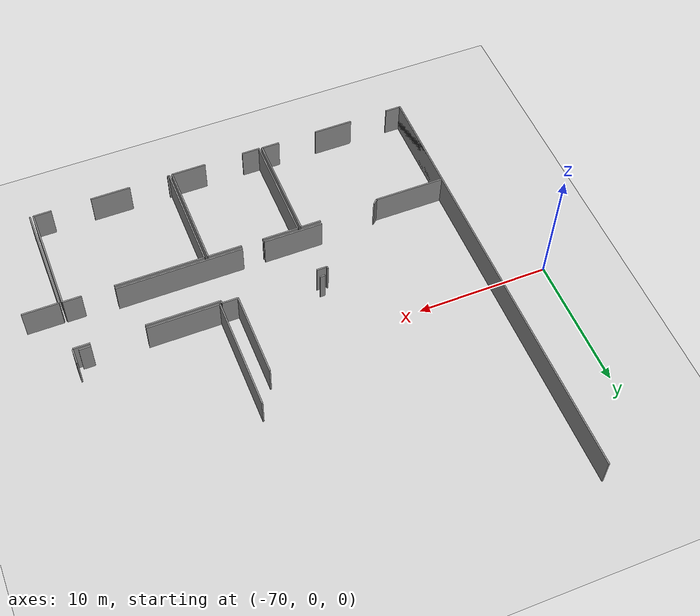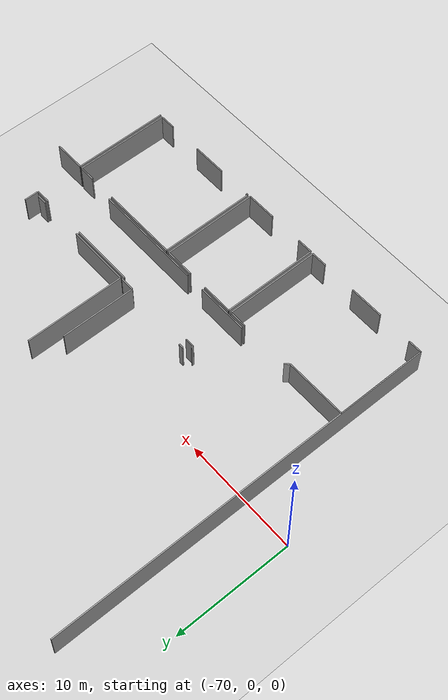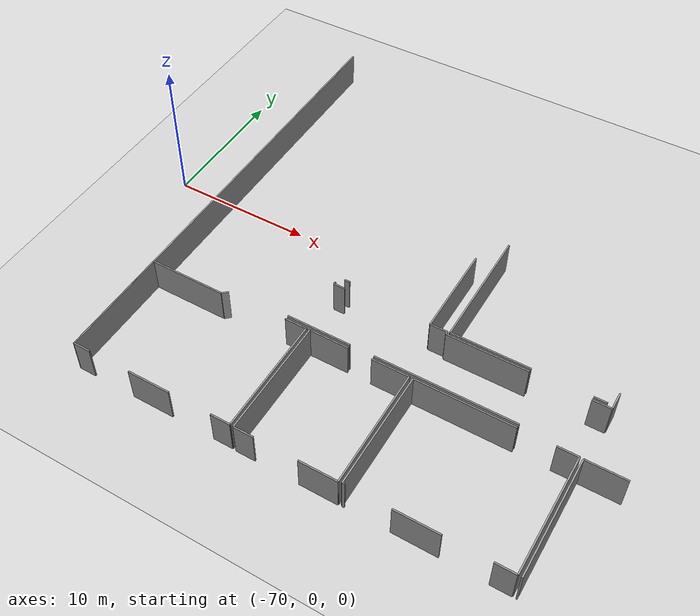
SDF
<sdf version="1.6">
 <world name="default">
  <model name="ground_plane">
   <static>1</static>
   <link name="link">
    <collision name="collision">
     <geometry><plane><normal>0 0 1</normal><size>100 100</size></plane></geometry>
     <surface><friction><ode><mu>100</mu><mu2>50</mu2></ode></friction></surface>
    </collision>
    <visual name="visual">
     <cast_shadows>0</cast_shadows>
     <geometry><plane><normal>0 0 1</normal><size>100 100</size></plane></geometry>
     <material>
      <script><uri>file://media/materials/scripts/gazebo.material</uri><name>Gazebo/Grey</name></script>
     </material>
    </visual>
   </link>
  </model>
  <model name="50041173">
   <static>1</static>
   <link name="Wall_142">
    <collision name="Wall_142_Collision">
     <geometry><box><size>9.57335804412 0.1 2.5</size></box></geometry>
     <pose>4.78667902206 0 1.25 0 0 0</pose>
    </collision>
    <visual name="Wall_142_Visual">
     <pose>4.78667902206 0 1.25 0 0 0</pose>
     <geometry><box><size>9.57335804412 0.1 2.5</size></box></geometry>
     <material>
      <script><uri>file://media/materials/scripts/gazebo.material</uri><name>Gazebo/Grey</name></script>
      <ambient>1 1 1 1</ambient>
     </material>
    </visual>
    <pose>25.7466551575 -25.056107035 0 0 0 3.14159265359</pose>
   </link>
   <link name="Wall_143">
    <collision name="Wall_143_Collision">
     <geometry><box><size>4.50163751301 0.1 2.5</size></box></geometry>
     <pose>2.25081875651 0 1.25 0 0 0</pose>
    </collision>
    <visual name="Wall_143_Visual">
     <pose>2.25081875651 0 1.25 0 0 0</pose>
     <geometry><box><size>4.50163751301 0.1 2.5</size></box></geometry>
     <material>
      <script><uri>file://media/materials/scripts/gazebo.material</uri><name>Gazebo/Grey</name></script>
      <ambient>1 1 1 1</ambient>
     </material>
    </visual>
    <pose>14.5031607809 -25.056107035 0 0 0 3.14159265359</pose>
   </link>
   <link name="Wall_144">
    <collision name="Wall_144_Collision">
     <geometry><box><size>0.170098250781 0.1 2.5</size></box></geometry>
     <pose>0.0850491253903 0 1.25 0 0 0</pose>
    </collision>
    <visual name="Wall_144_Visual">
     <pose>0.0850491253903 0 1.25 0 0 0</pose>
     <geometry><box><size>0.170098250781 0.1 2.5</size></box></geometry>
     <material>
      <script><uri>file://media/materials/scripts/gazebo.material</uri><name>Gazebo/Grey</name></script>
      <ambient>1 1 1 1</ambient>
     </material>
    </visual>
    <pose>11.0943410597 -21.1308994897 0 0 0 -1.57079632679</pose>
   </link>
   <link name="Wall_145">
    <collision name="Wall_145_Collision">
     <geometry><box><size>0.801238924573 0.1 2.5</size></box></geometry>
     <pose>0.400619462286 0 1.25 0 0 0</pose>
    </collision>
    <visual name="Wall_145_Visual">
     <pose>0.400619462286 0 1.25 0 0 0</pose>
     <geometry><box><size>0.801238924573 0.1 2.5</size></box></geometry>
     <material>
      <script><uri>file://media/materials/scripts/gazebo.material</uri><name>Gazebo/Grey</name></script>
      <ambient>1 1 1 1</ambient>
     </material>
    </visual>
    <pose>11.0943410597 -21.3009977405 0 0 0 0.0</pose>
   </link>
   <link name="Wall_146">
    <collision name="Wall_146_Collision">
     <geometry><box><size>5.57541445581 0.1 2.5</size></box></geometry>
     <pose>2.78770722791 0 1.25 0 0 0</pose>
    </collision>
    <visual name="Wall_146_Visual">
     <pose>2.78770722791 0 1.25 0 0 0</pose>
     <geometry><box><size>5.57541445581 0.1 2.5</size></box></geometry>
     <material>
      <script><uri>file://media/materials/scripts/gazebo.material</uri><name>Gazebo/Grey</name></script>
      <ambient>1 1 1 1</ambient>
     </material>
    </visual>
    <pose>19.1200588997 -21.3009977405 0 0 0 0.0</pose>
   </link>
   <link name="Wall_147">
    <collision name="Wall_147_Collision">
     <geometry><box><size>1.25555358095 0.1 2.5</size></box></geometry>
     <pose>0.627776790474 0 1.25 0 0 0</pose>
    </collision>
    <visual name="Wall_147_Visual">
     <pose>0.627776790474 0 1.25 0 0 0</pose>
     <geometry><box><size>1.25555358095 0.1 2.5</size></box></geometry>
     <material>
      <script><uri>file://media/materials/scripts/gazebo.material</uri><name>Gazebo/Grey</name></script>
      <ambient>1 1 1 1</ambient>
     </material>
    </visual>
    <pose>28.6567315748 -21.3009977405 0 0 0 0.0</pose>
   </link>
   <link name="Wall_243">
    <collision name="Wall_243_Collision">
     <geometry><box><size>8.22564675417 0.1 2.5</size></box></geometry>
     <pose>4.11282337708 0 1.25 0 0 0</pose>
    </collision>
    <visual name="Wall_243_Visual">
     <pose>4.11282337708 0 1.25 0 0 0</pose>
     <geometry><box><size>8.22564675417 0.1 2.5</size></box></geometry>
     <material>
      <script><uri>file://media/materials/scripts/gazebo.material</uri><name>Gazebo/Grey</name></script>
      <ambient>1 1 1 1</ambient>
     </material>
    </visual>
    <pose>29.7687171545 -33.5648277438 0 0 0 1.57079632679</pose>
   </link>
   <link name="Wall_244">
    <collision name="Wall_244_Collision">
     <geometry><box><size>2.72918835208 0.1 2.5</size></box></geometry>
     <pose>1.36459417604 0 1.25 0 0 0</pose>
    </collision>
    <visual name="Wall_244_Visual">
     <pose>1.36459417604 0 1.25 0 0 0</pose>
     <geometry><box><size>2.72918835208 0.1 2.5</size></box></geometry>
     <material>
      <script><uri>file://media/materials/scripts/gazebo.material</uri><name>Gazebo/Grey</name></script>
      <ambient>1 1 1 1</ambient>
     </material>
    </visual>
    <pose>29.7687171545 -25.3391809896 0 0 0 0.0</pose>
   </link>
   <link name="Wall_247">
    <collision name="Wall_247_Collision">
     <geometry><box><size>1.35761253142 0.1 2.5</size></box></geometry>
     <pose>0.678806265709 0 1.25 0 0 0</pose>
    </collision>
    <visual name="Wall_247_Visual">
     <pose>0.678806265709 0 1.25 0 0 0</pose>
     <geometry><box><size>1.35761253142 0.1 2.5</size></box></geometry>
     <material>
      <script><uri>file://media/materials/scripts/gazebo.material</uri><name>Gazebo/Grey</name></script>
      <ambient>1 1 1 1</ambient>
     </material>
    </visual>
    <pose>29.5129350834 -33.5223031811 0 0 0 3.14159265359</pose>
   </link>
   <link name="Wall_248">
    <collision name="Wall_248_Collision">
     <geometry><box><size>3.02698722994 0.1 2.5</size></box></geometry>
     <pose>1.51349361497 0 1.25 0 0 0</pose>
    </collision>
    <visual name="Wall_248_Visual">
     <pose>1.51349361497 0 1.25 0 0 0</pose>
     <geometry><box><size>3.02698722994 0.1 2.5</size></box></geometry>
     <material>
      <script><uri>file://media/materials/scripts/gazebo.material</uri><name>Gazebo/Grey</name></script>
      <ambient>1 1 1 1</ambient>
     </material>
    </visual>
    <pose>25.1335398208 -33.5223031811 0 0 0 3.14159265359</pose>
   </link>
   <link name="Wall_249">
    <collision name="Wall_249_Collision">
     <geometry><box><size>0.176699078423 0.1 2.5</size></box></geometry>
     <pose>0.0883495392115 0 1.25 0 0 0</pose>
    </collision>
    <visual name="Wall_249_Visual">
     <pose>0.0883495392115 0 1.25 0 0 0</pose>
     <geometry><box><size>0.176699078423 0.1 2.5</size></box></geometry>
     <material>
      <script><uri>file://media/materials/scripts/gazebo.material</uri><name>Gazebo/Grey</name></script>
      <ambient>1 1 1 1</ambient>
     </material>
    </visual>
    <pose>19.17045368 -33.5223031811 0 0 0 3.14159265359</pose>
   </link>
   <link name="Wall_250">
    <collision name="Wall_250_Collision">
     <geometry><box><size>8.20914468506 0.1 2.5</size></box></geometry>
     <pose>4.10457234253 0 1.25 0 0 0</pose>
    </collision>
    <visual name="Wall_250_Visual">
     <pose>4.10457234253 0 1.25 0 0 0</pose>
     <geometry><box><size>8.20914468506 0.1 2.5</size></box></geometry>
     <material>
      <script><uri>file://media/materials/scripts/gazebo.material</uri><name>Gazebo/Grey</name></script>
      <ambient>1 1 1 1</ambient>
     </material>
    </visual>
    <pose>18.9937546015 -33.5223031811 0 0 0 1.57079632679</pose>
   </link>
   <link name="Wall_251">
    <collision name="Wall_251_Collision">
     <geometry><box><size>6.74921932519 0.1 2.5</size></box></geometry>
     <pose>3.3746096626 0 1.25 0 0 0</pose>
    </collision>
    <visual name="Wall_251_Visual">
     <pose>3.3746096626 0 1.25 0 0 0</pose>
     <geometry><box><size>6.74921932519 0.1 2.5</size></box></geometry>
     <material>
      <script><uri>file://media/materials/scripts/gazebo.material</uri><name>Gazebo/Grey</name></script>
      <ambient>1 1 1 1</ambient>
     </material>
    </visual>
    <pose>18.9937546015 -25.313158496 0 0 0 0.0</pose>
   </link>
   <link name="Wall_252">
    <collision name="Wall_252_Collision">
     <geometry><box><size>1.39632892432 0.1 2.5</size></box></geometry>
     <pose>0.698164462159 0 1.25 0 0 0</pose>
    </collision>
    <visual name="Wall_252_Visual">
     <pose>0.698164462159 0 1.25 0 0 0</pose>
     <geometry><box><size>1.39632892432 0.1 2.5</size></box></geometry>
     <material>
      <script><uri>file://media/materials/scripts/gazebo.material</uri><name>Gazebo/Grey</name></script>
      <ambient>1 1 1 1</ambient>
     </material>
    </visual>
    <pose>28.1438980426 -25.313158496 0 0 0 0.0</pose>
   </link>
   <link name="Wall_253">
    <collision name="Wall_253_Collision">
     <geometry><box><size>8.20919005184 0.1 2.5</size></box></geometry>
     <pose>4.10459502592 0 1.25 0 0 0</pose>
    </collision>
    <visual name="Wall_253_Visual">
     <pose>4.10459502592 0 1.25 0 0 0</pose>
     <geometry><box><size>8.20919005184 0.1 2.5</size></box></geometry>
     <material>
      <script><uri>file://media/materials/scripts/gazebo.material</uri><name>Gazebo/Grey</name></script>
      <ambient>1 1 1 1</ambient>
     </material>
    </visual>
    <pose>29.5402269669 -25.313158496 0 0 0 -1.57412088544</pose>
   </link>
   <link name="Wall_254">
    <collision name="Wall_254_Collision">
     <geometry><box><size>2.61494325827 0.1 2.5</size></box></geometry>
     <pose>1.30747162914 0 1.25 0 0 0</pose>
    </collision>
    <visual name="Wall_254_Visual">
     <pose>1.30747162914 0 1.25 0 0 0</pose>
     <geometry><box><size>2.61494325827 0.1 2.5</size></box></geometry>
     <material>
      <script><uri>file://media/materials/scripts/gazebo.material</uri><name>Gazebo/Grey</name></script>
      <ambient>1 1 1 1</ambient>
     </material>
    </visual>
    <pose>18.763106451 -33.5648277438 0 0 0 3.14159265359</pose>
   </link>
   <link name="Wall_255">
    <collision name="Wall_255_Collision">
     <geometry><box><size>1.37094112569 0.1 2.5</size></box></geometry>
     <pose>0.685470562847 0 1.25 0 0 0</pose>
    </collision>
    <visual name="Wall_255_Visual">
     <pose>0.685470562847 0 1.25 0 0 0</pose>
     <geometry><box><size>1.37094112569 0.1 2.5</size></box></geometry>
     <material>
      <script><uri>file://media/materials/scripts/gazebo.material</uri><name>Gazebo/Grey</name></script>
      <ambient>1 1 1 1</ambient>
     </material>
    </visual>
    <pose>13.1524029551 -33.5648277438 0 0 0 3.14159265359</pose>
   </link>
   <link name="Wall_256">
    <collision name="Wall_256_Collision">
     <geometry><box><size>8.26372845211 0.1 2.5</size></box></geometry>
     <pose>4.13186422605 0 1.25 0 0 0</pose>
    </collision>
    <visual name="Wall_256_Visual">
     <pose>4.13186422605 0 1.25 0 0 0</pose>
     <geometry><box><size>8.26372845211 0.1 2.5</size></box></geometry>
     <material>
      <script><uri>file://media/materials/scripts/gazebo.material</uri><name>Gazebo/Grey</name></script>
      <ambient>1 1 1 1</ambient>
     </material>
    </visual>
    <pose>11.7814618294 -33.5648277438 0 0 0 1.57079632679</pose>
   </link>
   <link name="Wall_257">
    <collision name="Wall_257_Collision">
     <geometry><box><size>2.74188225139 0.1 2.5</size></box></geometry>
     <pose>1.37094112569 0 1.25 0 0 0</pose>
    </collision>
    <visual name="Wall_257_Visual">
     <pose>1.37094112569 0 1.25 0 0 0</pose>
     <geometry><box><size>2.74188225139 0.1 2.5</size></box></geometry>
     <material>
      <script><uri>file://media/materials/scripts/gazebo.material</uri><name>Gazebo/Grey</name></script>
      <ambient>1 1 1 1</ambient>
     </material>
    </visual>
    <pose>11.7814618294 -25.3010992917 0 0 0 0.0</pose>
   </link>
   <link name="Wall_258">
    <collision name="Wall_258_Collision">
     <geometry><box><size>2.56924522075 0.1 2.5</size></box></geometry>
     <pose>1.28462261037 0 1.25 0 0 0</pose>
    </collision>
    <visual name="Wall_258_Visual">
     <pose>1.28462261037 0 1.25 0 0 0</pose>
     <geometry><box><size>2.56924522075 0.1 2.5</size></box></geometry>
     <material>
      <script><uri>file://media/materials/scripts/gazebo.material</uri><name>Gazebo/Grey</name></script>
      <ambient>1 1 1 1</ambient>
     </material>
    </visual>
    <pose>16.1557795324 -25.3010992917 0 0 0 0.0</pose>
   </link>
   <link name="Wall_259">
    <collision name="Wall_259_Collision">
     <geometry><box><size>8.26381619749 0.1 2.5</size></box></geometry>
     <pose>4.13190809874 0 1.25 0 0 0</pose>
    </collision>
    <visual name="Wall_259_Visual">
     <pose>4.13190809874 0 1.25 0 0 0</pose>
     <geometry><box><size>8.26381619749 0.1 2.5</size></box></geometry>
     <material>
      <script><uri>file://media/materials/scripts/gazebo.material</uri><name>Gazebo/Grey</name></script>
      <ambient>1 1 1 1</ambient>
     </material>
    </visual>
    <pose>18.7250247531 -25.3010992917 0 0 0 -1.56618806448</pose>
   </link>
   <link name="Wall_260">
    <collision name="Wall_260_Collision">
     <geometry><box><size>1.37246439361 0.1 2.5</size></box></geometry>
     <pose>0.686232196806 0 1.25 0 0 0</pose>
    </collision>
    <visual name="Wall_260_Visual">
     <pose>0.686232196806 0 1.25 0 0 0</pose>
     <geometry><box><size>1.37246439361 0.1 2.5</size></box></geometry>
     <material>
      <script><uri>file://media/materials/scripts/gazebo.material</uri><name>Gazebo/Grey</name></script>
      <ambient>1 1 1 1</ambient>
     </material>
    </visual>
    <pose>11.5372312067 -33.5369011653 0 0 0 3.14159265359</pose>
   </link>
   <link name="Wall_261">
    <collision name="Wall_261_Collision">
     <geometry><box><size>2.98509736221 0.1 2.5</size></box></geometry>
     <pose>1.4925486811 0 1.25 0 0 0</pose>
    </collision>
    <visual name="Wall_261_Visual">
     <pose>1.4925486811 0 1.25 0 0 0</pose>
     <geometry><box><size>2.98509736221 0.1 2.5</size></box></geometry>
     <material>
      <script><uri>file://media/materials/scripts/gazebo.material</uri><name>Gazebo/Grey</name></script>
      <ambient>1 1 1 1</ambient>
     </material>
    </visual>
    <pose>7.17002208738 -33.5369011653 0 0 0 3.14159265359</pose>
   </link>
   <link name="Wall_262">
    <collision name="Wall_262_Collision">
     <geometry><box><size>1.19017999949 0.1 2.5</size></box></geometry>
     <pose>0.595089999746 0 1.25 0 0 0</pose>
    </collision>
    <visual name="Wall_262_Visual">
     <pose>0.595089999746 0 1.25 0 0 0</pose>
     <geometry><box><size>1.19017999949 0.1 2.5</size></box></geometry>
     <material>
      <script><uri>file://media/materials/scripts/gazebo.material</uri><name>Gazebo/Grey</name></script>
      <ambient>1 1 1 1</ambient>
     </material>
    </visual>
    <pose>1.19017999949 -33.5369011653 0 0 0 3.14159265359</pose>
   </link>
   <link name="Wall_263">
    <collision name="Wall_263_Collision">
     <geometry><box><size>7.88989311737 0.1 2.5</size></box></geometry>
     <pose>3.94494655868 0 1.25 0 0 0</pose>
    </collision>
    <visual name="Wall_263_Visual">
     <pose>3.94494655868 0 1.25 0 0 0</pose>
     <geometry><box><size>7.88989311737 0.1 2.5</size></box></geometry>
     <material>
      <script><uri>file://media/materials/scripts/gazebo.material</uri><name>Gazebo/Grey</name></script>
      <ambient>1 1 1 1</ambient>
     </material>
    </visual>
    <pose>0.0 -33.5369011653 0 0 0 1.57079632679</pose>
   </link>
   <link name="Wall_264">
    <collision name="Wall_264_Collision">
     <geometry><box><size>5.36545736119 0.1 2.5</size></box></geometry>
     <pose>2.6827286806 0 1.25 0 0 0</pose>
    </collision>
    <visual name="Wall_264_Visual">
     <pose>2.6827286806 0 1.25 0 0 0</pose>
     <geometry><box><size>5.36545736119 0.1 2.5</size></box></geometry>
     <material>
      <script><uri>file://media/materials/scripts/gazebo.material</uri><name>Gazebo/Grey</name></script>
      <ambient>1 1 1 1</ambient>
     </material>
    </visual>
    <pose>0.0 -25.6470080479 0 0 0 0.0</pose>
   </link>
   <link name="Wall_265">
    <collision name="Wall_265_Collision">
     <geometry><box><size>0.477347885163 0.1 2.5</size></box></geometry>
     <pose>0.238673942582 0 1.25 0 0 0</pose>
    </collision>
    <visual name="Wall_265_Visual">
     <pose>0.238673942582 0 1.25 0 0 0</pose>
     <geometry><box><size>0.477347885163 0.1 2.5</size></box></geometry>
     <material>
      <script><uri>file://media/materials/scripts/gazebo.material</uri><name>Gazebo/Grey</name></script>
      <ambient>1 1 1 1</ambient>
     </material>
    </visual>
    <pose>5.36545736119 -25.6470080479 0 0 0 0.751356756195</pose>
   </link>
   <link name="Wall_266">
    <collision name="Wall_266_Collision">
     <geometry><box><size>1.531392013 0.1 2.5</size></box></geometry>
     <pose>0.765696006499 0 1.25 0 0 0</pose>
    </collision>
    <visual name="Wall_266_Visual">
     <pose>0.765696006499 0 1.25 0 0 0</pose>
     <geometry><box><size>1.531392013 0.1 2.5</size></box></geometry>
     <material>
      <script><uri>file://media/materials/scripts/gazebo.material</uri><name>Gazebo/Grey</name></script>
      <ambient>1 1 1 1</ambient>
     </material>
    </visual>
    <pose>9.99695346417 -25.3211556526 0 0 0 0.0</pose>
   </link>
   <link name="Wall_267">
    <collision name="Wall_267_Collision">
     <geometry><box><size>8.21575031788 0.1 2.5</size></box></geometry>
     <pose>4.10787515894 0 1.25 0 0 0</pose>
    </collision>
    <visual name="Wall_267_Visual">
     <pose>4.10787515894 0 1.25 0 0 0</pose>
     <geometry><box><size>8.21575031788 0.1 2.5</size></box></geometry>
     <material>
      <script><uri>file://media/materials/scripts/gazebo.material</uri><name>Gazebo/Grey</name></script>
      <ambient>1 1 1 1</ambient>
     </material>
    </visual>
    <pose>11.5283454772 -25.3211556526 0 0 0 -1.56971477844</pose>
   </link>
   <link name="Wall_268">
    <collision name="Wall_268_Collision">
     <geometry><box><size>0.182919089086 0.1 2.5</size></box></geometry>
     <pose>0.0914595445429 0 1.25 0 0 0</pose>
    </collision>
    <visual name="Wall_268_Visual">
     <pose>0.0914595445429 0 1.25 0 0 0</pose>
     <geometry><box><size>0.182919089086 0.1 2.5</size></box></geometry>
     <material>
      <script><uri>file://media/materials/scripts/gazebo.material</uri><name>Gazebo/Grey</name></script>
      <ambient>1 1 1 1</ambient>
     </material>
    </visual>
    <pose>19.1283099342 -21.2839879154 0 0 0 1.57079632679</pose>
   </link>
   <link name="Wall_269">
    <collision name="Wall_269_Collision">
     <geometry><box><size>1.20185838686 0.1 2.5</size></box></geometry>
     <pose>0.60092919343 0 1.25 0 0 0</pose>
    </collision>
    <visual name="Wall_269_Visual">
     <pose>0.60092919343 0 1.25 0 0 0</pose>
     <geometry><box><size>1.20185838686 0.1 2.5</size></box></geometry>
     <material>
      <script><uri>file://media/materials/scripts/gazebo.material</uri><name>Gazebo/Grey</name></script>
      <ambient>1 1 1 1</ambient>
     </material>
    </visual>
    <pose>19.1283099342 -21.1010688263 0 0 0 3.14159265359</pose>
   </link>
   <link name="Wall_270">
    <collision name="Wall_270_Collision">
     <geometry><box><size>6.43301429333 0.1 2.5</size></box></geometry>
     <pose>3.21650714667 0 1.25 0 0 0</pose>
    </collision>
    <visual name="Wall_270_Visual">
     <pose>3.21650714667 0 1.25 0 0 0</pose>
     <geometry><box><size>6.43301429333 0.1 2.5</size></box></geometry>
     <material>
      <script><uri>file://media/materials/scripts/gazebo.material</uri><name>Gazebo/Grey</name></script>
      <ambient>1 1 1 1</ambient>
     </material>
    </visual>
    <pose>17.9264515474 -21.1010688263 0 0 0 1.57079632679</pose>
   </link>
   <link name="Wall_275">
    <collision name="Wall_275_Collision">
     <geometry><box><size>0.391352915789 0.1 2.5</size></box></geometry>
     <pose>0.195676457894 0 1.25 0 0 0</pose>
    </collision>
    <visual name="Wall_275_Visual">
     <pose>0.195676457894 0 1.25 0 0 0</pose>
     <geometry><box><size>0.391352915789 0.1 2.5</size></box></geometry>
     <material>
      <script><uri>file://media/materials/scripts/gazebo.material</uri><name>Gazebo/Grey</name></script>
      <ambient>1 1 1 1</ambient>
     </material>
    </visual>
    <pose>11.5015613496 -20.6572901064 0 0 0 0.0</pose>
   </link>
   <link name="Wall_277">
    <collision name="Wall_277_Collision">
     <geometry><box><size>0.86864352992 0.1 2.5</size></box></geometry>
     <pose>0.43432176496 0 1.25 0 0 0</pose>
    </collision>
    <visual name="Wall_277_Visual">
     <pose>0.43432176496 0 1.25 0 0 0</pose>
     <geometry><box><size>0.86864352992 0.1 2.5</size></box></geometry>
     <material>
      <script><uri>file://media/materials/scripts/gazebo.material</uri><name>Gazebo/Grey</name></script>
      <ambient>1 1 1 1</ambient>
     </material>
    </visual>
    <pose>29.5364187971 -21.0676838711 0 0 0 3.14159265359</pose>
   </link>
   <link name="Wall_278">
    <collision name="Wall_278_Collision">
     <geometry><box><size>5.43273502755 0.1 2.5</size></box></geometry>
     <pose>2.71636751377 0 1.25 0 0 0</pose>
    </collision>
    <visual name="Wall_278_Visual">
     <pose>2.71636751377 0 1.25 0 0 0</pose>
     <geometry><box><size>5.43273502755 0.1 2.5</size></box></geometry>
     <material>
      <script><uri>file://media/materials/scripts/gazebo.material</uri><name>Gazebo/Grey</name></script>
      <ambient>1 1 1 1</ambient>
     </material>
    </visual>
    <pose>24.7159105334 -21.0676838711 0 0 0 3.14159265359</pose>
   </link>
   <link name="Wall_279">
    <collision name="Wall_279_Collision">
     <geometry><box><size>8.5940237122 0.1 2.5</size></box></geometry>
     <pose>4.2970118561 0 1.25 0 0 0</pose>
    </collision>
    <visual name="Wall_279_Visual">
     <pose>4.2970118561 0 1.25 0 0 0</pose>
     <geometry><box><size>8.5940237122 0.1 2.5</size></box></geometry>
     <material>
      <script><uri>file://media/materials/scripts/gazebo.material</uri><name>Gazebo/Grey</name></script>
      <ambient>1 1 1 1</ambient>
     </material>
    </visual>
    <pose>19.2831755059 -21.0676838711 0 0 0 1.57079632679</pose>
   </link>
   <link name="Wall_291">
    <collision name="Wall_291_Collision">
     <geometry><box><size>1.21328289624 0.1 2.5</size></box></geometry>
     <pose>0.60664144812 0 1.25 0 0 0</pose>
    </collision>
    <visual name="Wall_291_Visual">
     <pose>0.60664144812 0 1.25 0 0 0</pose>
     <geometry><box><size>1.21328289624 0.1 2.5</size></box></geometry>
     <material>
      <script><uri>file://media/materials/scripts/gazebo.material</uri><name>Gazebo/Grey</name></script>
      <ambient>1 1 1 1</ambient>
     </material>
    </visual>
    <pose>29.9120312778 -21.2626621646 0 0 0 1.57079632679</pose>
   </link>
   <link name="Wall_379">
    <collision name="Wall_379_Collision">
     <geometry><box><size>33.578664094 0.1 2.5</size></box></geometry>
     <pose>16.789332047 0 1.25 0 0 0</pose>
    </collision>
    <visual name="Wall_379_Visual">
     <pose>16.789332047 0 1.25 0 0 0</pose>
     <geometry><box><size>33.578664094 0.1 2.5</size></box></geometry>
     <material>
      <script><uri>file://media/materials/scripts/gazebo.material</uri><name>Gazebo/Grey</name></script>
      <ambient>1 1 1 1</ambient>
     </material>
    </visual>
    <pose>0.0 -33.578664094 0 0 0 1.57079632679</pose>
   </link>
   <pose>-65.65 16.778664094 0 0 0 0</pose>
  </model>
 </world>
</sdf>
